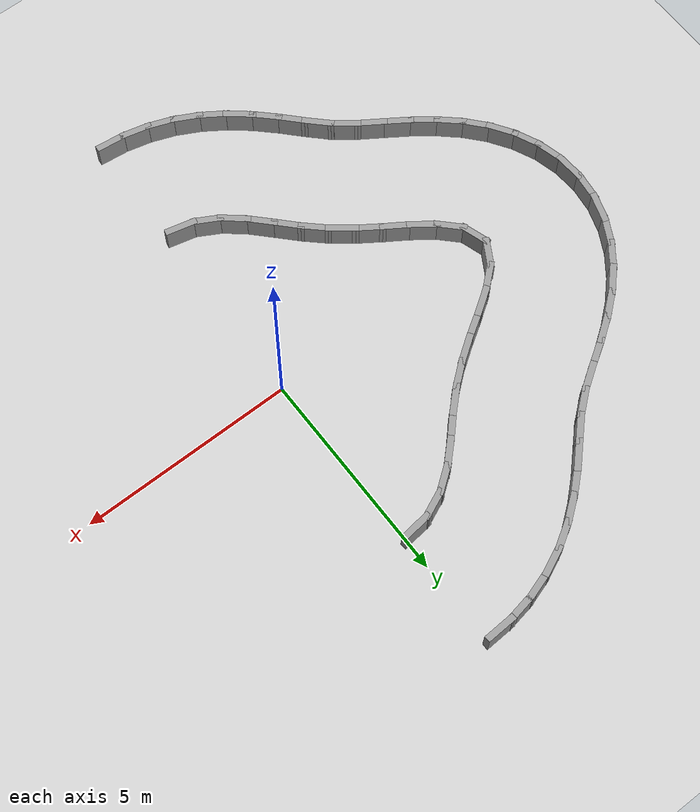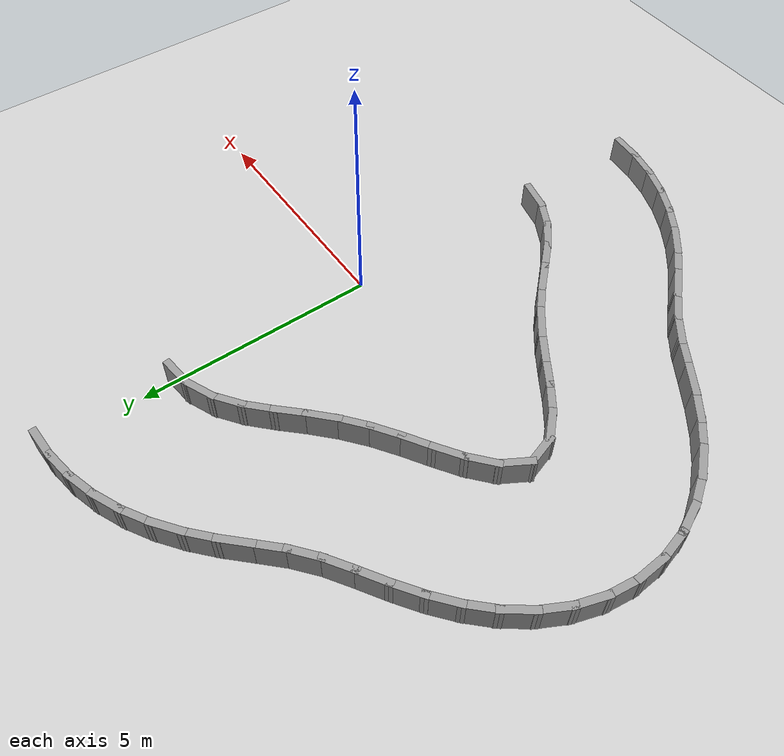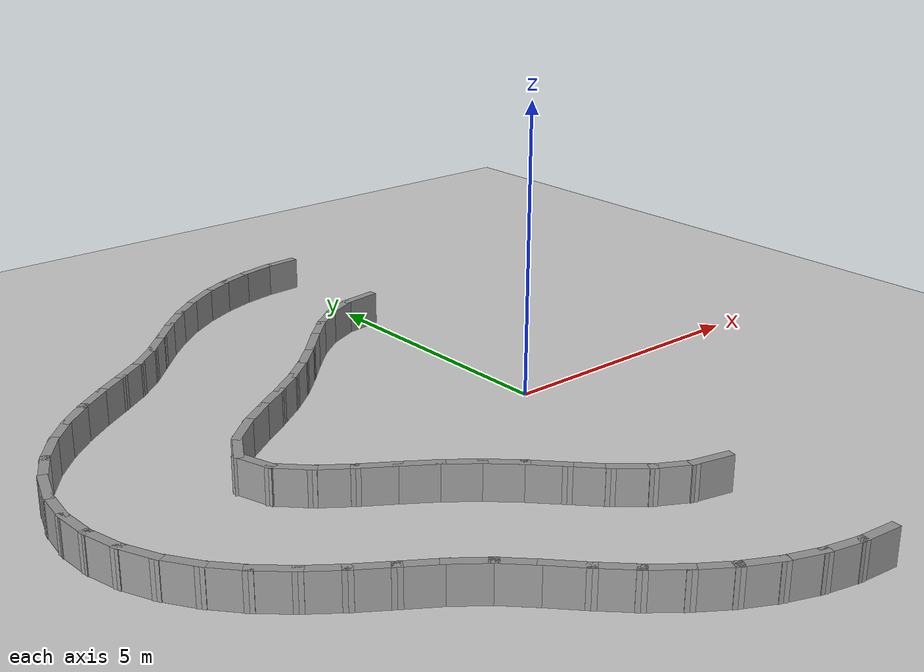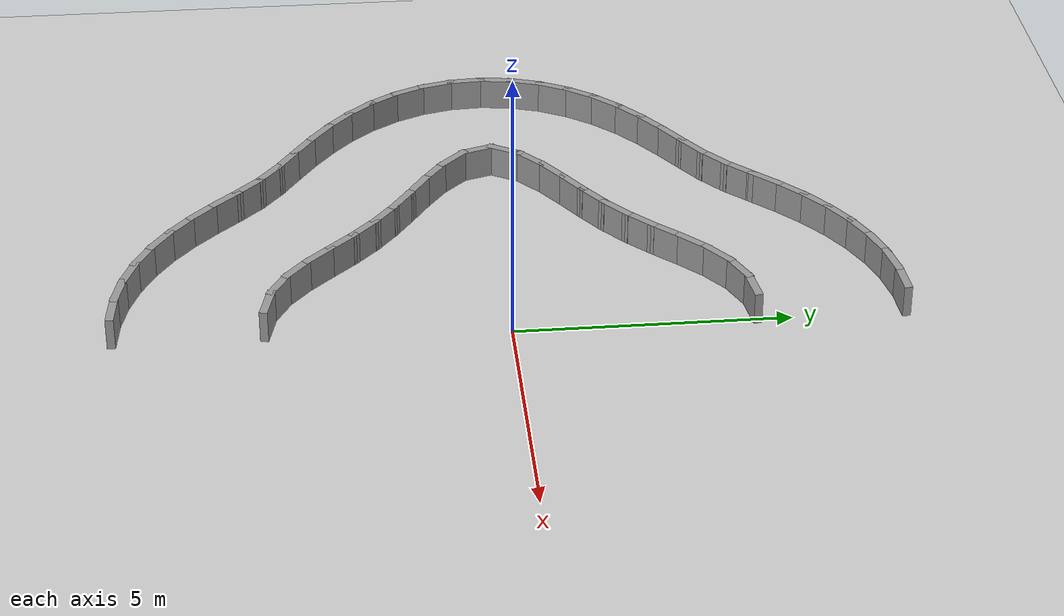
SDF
<sdf version="1.7">
 <world name="default">
  <model name="ground_plane">
   <static>1</static>
   <link name="link">
    <collision name="collision">
     <geometry><plane><normal>0 0 1</normal><size>100 100</size></plane></geometry>
     <surface><friction><ode><mu>100</mu><mu2>50</mu2></ode></friction></surface>
    </collision>
    <visual name="visual">
     <cast_shadows>0</cast_shadows>
     <geometry><plane><normal>0 0 1</normal><size>100 100</size></plane></geometry>
     <material>
      <script><uri>file://media/materials/scripts/gazebo.material</uri><name>Gazebo/Grey</name></script>
     </material>
    </visual>
   </link>
  </model>
  <model name="rand_lobed_08">
   <link name="Wall_12">
    <collision name="Wall_12_Collision">
     <geometry><box><size>0.7476 0.1500 0.6000</size></box></geometry>
     <pose>0 0 0.3000 0 -0 0</pose>
    </collision>
    <visual name="Wall_12_Visual">
     <pose>0 0 0.3000 0 -0 0</pose>
     <geometry><box><size>0.7476 0.1500 0.6000</size></box></geometry>
     <material>
      <script><uri>file://media/materials/scripts/gazebo.material</uri><name>Gazebo/Grey</name></script>
      <ambient>1 1 1 1</ambient>
     </material>
    </visual>
    <pose>-0.2493 4.3085 0 0 -0 -3.01108</pose>
   </link>
   <link name="Wall_13">
    <collision name="Wall_13_Collision">
     <geometry><box><size>0.7483 0.1500 0.6000</size></box></geometry>
     <pose>0 0 0.3000 0 -0 0</pose>
    </collision>
    <visual name="Wall_13_Visual">
     <pose>0 0 0.3000 0 -0 0</pose>
     <geometry><box><size>0.7483 0.1500 0.6000</size></box></geometry>
     <material>
      <script><uri>file://media/materials/scripts/gazebo.material</uri><name>Gazebo/Grey</name></script>
      <ambient>1 1 1 1</ambient>
     </material>
    </visual>
    <pose>-0.8189 4.1481 0 0 -0 -2.72312</pose>
   </link>
   <link name="Wall_14">
    <collision name="Wall_14_Collision">
     <geometry><box><size>0.7492 0.1500 0.6000</size></box></geometry>
     <pose>0 0 0.3000 0 -0 0</pose>
    </collision>
    <visual name="Wall_14_Visual">
     <pose>0 0 0.3000 0 -0 0</pose>
     <geometry><box><size>0.7492 0.1500 0.6000</size></box></geometry>
     <material>
      <script><uri>file://media/materials/scripts/gazebo.material</uri><name>Gazebo/Grey</name></script>
      <ambient>1 1 1 1</ambient>
     </material>
    </visual>
    <pose>-1.3320 3.8470 0 0 -0 -2.49903</pose>
   </link>
   <link name="Wall_15">
    <collision name="Wall_15_Collision">
     <geometry><box><size>0.7498 0.1500 0.6000</size></box></geometry>
     <pose>0 0 0.3000 0 -0 0</pose>
    </collision>
    <visual name="Wall_15_Visual">
     <pose>0 0 0.3000 0 -0 0</pose>
     <geometry><box><size>0.7498 0.1500 0.6000</size></box></geometry>
     <material>
      <script><uri>file://media/materials/scripts/gazebo.material</uri><name>Gazebo/Grey</name></script>
      <ambient>1 1 1 1</ambient>
     </material>
    </visual>
    <pose>-1.7860 3.4575 0 0 -0 -2.36588</pose>
   </link>
   <link name="Wall_16">
    <collision name="Wall_16_Collision">
     <geometry><box><size>0.7500 0.1500 0.6000</size></box></geometry>
     <pose>0 0 0.3000 0 -0 0</pose>
    </collision>
    <visual name="Wall_16_Visual">
     <pose>0 0 0.3000 0 -0 0</pose>
     <geometry><box><size>0.7500 0.1500 0.6000</size></box></geometry>
     <material>
      <script><uri>file://media/materials/scripts/gazebo.material</uri><name>Gazebo/Grey</name></script>
      <ambient>1 1 1 1</ambient>
     </material>
    </visual>
    <pose>-2.2065 3.0298 0 0 -0 -2.32965</pose>
   </link>
   <link name="Wall_17">
    <collision name="Wall_17_Collision">
     <geometry><box><size>0.7499 0.1500 0.6000</size></box></geometry>
     <pose>0 0 0.3000 0 -0 0</pose>
    </collision>
    <visual name="Wall_17_Visual">
     <pose>0 0 0.3000 0 -0 0</pose>
     <geometry><box><size>0.7499 0.1500 0.6000</size></box></geometry>
     <material>
      <script><uri>file://media/materials/scripts/gazebo.material</uri><name>Gazebo/Grey</name></script>
      <ambient>1 1 1 1</ambient>
     </material>
    </visual>
    <pose>-2.6282 2.6032 0 0 -0 -2.37116</pose>
   </link>
   <link name="Wall_18">
    <collision name="Wall_18_Collision">
     <geometry><box><size>0.7498 0.1500 0.6000</size></box></geometry>
     <pose>0 0 0.3000 0 -0 0</pose>
    </collision>
    <visual name="Wall_18_Visual">
     <pose>0 0 0.3000 0 -0 0</pose>
     <geometry><box><size>0.7498 0.1500 0.6000</size></box></geometry>
     <material>
      <script><uri>file://media/materials/scripts/gazebo.material</uri><name>Gazebo/Grey</name></script>
      <ambient>1 1 1 1</ambient>
     </material>
    </visual>
    <pose>-3.0748 2.2036 0 0 -0 -2.45222</pose>
   </link>
   <link name="Wall_19">
    <collision name="Wall_19_Collision">
     <geometry><box><size>0.7499 0.1500 0.6000</size></box></geometry>
     <pose>0 0 0.3000 0 -0 0</pose>
    </collision>
    <visual name="Wall_19_Visual">
     <pose>0 0 0.3000 0 -0 0</pose>
     <geometry><box><size>0.7499 0.1500 0.6000</size></box></geometry>
     <material>
      <script><uri>file://media/materials/scripts/gazebo.material</uri><name>Gazebo/Grey</name></script>
      <ambient>1 1 1 1</ambient>
     </material>
    </visual>
    <pose>-3.5519 1.8406 0 0 -0 -2.53011</pose>
   </link>
   <link name="Wall_20">
    <collision name="Wall_20_Collision">
     <geometry><box><size>0.7500 0.1500 0.6000</size></box></geometry>
     <pose>0 0 0.3000 0 -0 0</pose>
    </collision>
    <visual name="Wall_20_Visual">
     <pose>0 0 0.3000 0 -0 0</pose>
     <geometry><box><size>0.7500 0.1500 0.6000</size></box></geometry>
     <material>
      <script><uri>file://media/materials/scripts/gazebo.material</uri><name>Gazebo/Grey</name></script>
      <ambient>1 1 1 1</ambient>
     </material>
    </visual>
    <pose>-4.0495 1.5056 0 0 -0 -2.56807</pose>
   </link>
   <link name="Wall_21">
    <collision name="Wall_21_Collision">
     <geometry><box><size>0.7499 0.1500 0.6000</size></box></geometry>
     <pose>0 0 0.3000 0 -0 0</pose>
    </collision>
    <visual name="Wall_21_Visual">
     <pose>0 0 0.3000 0 -0 0</pose>
     <geometry><box><size>0.7499 0.1500 0.6000</size></box></geometry>
     <material>
      <script><uri>file://media/materials/scripts/gazebo.material</uri><name>Gazebo/Grey</name></script>
      <ambient>1 1 1 1</ambient>
     </material>
    </visual>
    <pose>-4.5487 1.1731 0 0 -0 -2.53980</pose>
   </link>
   <link name="Wall_22">
    <collision name="Wall_22_Collision">
     <geometry><box><size>0.7491 0.1500 0.6000</size></box></geometry>
     <pose>0 0 0.3000 0 -0 0</pose>
    </collision>
    <visual name="Wall_22_Visual">
     <pose>0 0 0.3000 0 -0 0</pose>
     <geometry><box><size>0.7491 0.1500 0.6000</size></box></geometry>
     <material>
      <script><uri>file://media/materials/scripts/gazebo.material</uri><name>Gazebo/Grey</name></script>
      <ambient>1 1 1 1</ambient>
     </material>
    </visual>
    <pose>-5.0204 0.8049 0 0 -0 -2.41792</pose>
   </link>
   <link name="Wall_23">
    <collision name="Wall_23_Collision">
     <geometry><box><size>0.7427 0.1500 0.6000</size></box></geometry>
     <pose>0 0 0.3000 0 -0 0</pose>
    </collision>
    <visual name="Wall_23_Visual">
     <pose>0 0 0.3000 0 -0 0</pose>
     <geometry><box><size>0.7427 0.1500 0.6000</size></box></geometry>
     <material>
      <script><uri>file://media/materials/scripts/gazebo.material</uri><name>Gazebo/Grey</name></script>
      <ambient>1 1 1 1</ambient>
     </material>
    </visual>
    <pose>-5.3933 0.3500 0 0 -0 -2.09524</pose>
   </link>
   <link name="Wall_24">
    <collision name="Wall_24_Collision">
     <geometry><box><size>0.7327 0.1500 0.6000</size></box></geometry>
     <pose>0 0 0.3000 0 -0 0</pose>
    </collision>
    <visual name="Wall_24_Visual">
     <pose>0 0 0.3000 0 -0 0</pose>
     <geometry><box><size>0.7327 0.1500 0.6000</size></box></geometry>
     <material>
      <script><uri>file://media/materials/scripts/gazebo.material</uri><name>Gazebo/Grey</name></script>
      <ambient>1 1 1 1</ambient>
     </material>
    </visual>
    <pose>-5.4532 -0.1841 0 0 -0 -1.26207</pose>
   </link>
   <link name="Wall_25">
    <collision name="Wall_25_Collision">
     <geometry><box><size>0.7485 0.1500 0.6000</size></box></geometry>
     <pose>0 0 0.3000 0 -0 0</pose>
    </collision>
    <visual name="Wall_25_Visual">
     <pose>0 0 0.3000 0 -0 0</pose>
     <geometry><box><size>0.7485 0.1500 0.6000</size></box></geometry>
     <material>
      <script><uri>file://media/materials/scripts/gazebo.material</uri><name>Gazebo/Grey</name></script>
      <ambient>1 1 1 1</ambient>
     </material>
    </visual>
    <pose>-5.1544 -0.6746 0 0 -0 -0.79143</pose>
   </link>
   <link name="Wall_26">
    <collision name="Wall_26_Collision">
     <geometry><box><size>0.7498 0.1500 0.6000</size></box></geometry>
     <pose>0 0 0.3000 0 -0 0</pose>
    </collision>
    <visual name="Wall_26_Visual">
     <pose>0 0 0.3000 0 -0 0</pose>
     <geometry><box><size>0.7498 0.1500 0.6000</size></box></geometry>
     <material>
      <script><uri>file://media/materials/scripts/gazebo.material</uri><name>Gazebo/Grey</name></script>
      <ambient>1 1 1 1</ambient>
     </material>
    </visual>
    <pose>-4.7014 -1.0636 0 0 -0 -0.62796</pose>
   </link>
   <link name="Wall_27">
    <collision name="Wall_27_Collision">
     <geometry><box><size>0.7500 0.1500 0.6000</size></box></geometry>
     <pose>0 0 0.3000 0 -0 0</pose>
    </collision>
    <visual name="Wall_27_Visual">
     <pose>0 0 0.3000 0 -0 0</pose>
     <geometry><box><size>0.7500 0.1500 0.6000</size></box></geometry>
     <material>
      <script><uri>file://media/materials/scripts/gazebo.material</uri><name>Gazebo/Grey</name></script>
      <ambient>1 1 1 1</ambient>
     </material>
    </visual>
    <pose>-4.2068 -1.4027 0 0 -0 -0.57424</pose>
   </link>
   <link name="Wall_28">
    <collision name="Wall_28_Collision">
     <geometry><box><size>0.7499 0.1500 0.6000</size></box></geometry>
     <pose>0 0 0.3000 0 -0 0</pose>
    </collision>
    <visual name="Wall_28_Visual">
     <pose>0 0 0.3000 0 -0 0</pose>
     <geometry><box><size>0.7499 0.1500 0.6000</size></box></geometry>
     <material>
      <script><uri>file://media/materials/scripts/gazebo.material</uri><name>Gazebo/Grey</name></script>
      <ambient>1 1 1 1</ambient>
     </material>
    </visual>
    <pose>-3.7063 -1.7335 0 0 -0 -0.59386</pose>
   </link>
   <link name="Wall_29">
    <collision name="Wall_29_Collision">
     <geometry><box><size>0.7498 0.1500 0.6000</size></box></geometry>
     <pose>0 0 0.3000 0 -0 0</pose>
    </collision>
    <visual name="Wall_29_Visual">
     <pose>0 0 0.3000 0 -0 0</pose>
     <geometry><box><size>0.7498 0.1500 0.6000</size></box></geometry>
     <material>
      <script><uri>file://media/materials/scripts/gazebo.material</uri><name>Gazebo/Grey</name></script>
      <ambient>1 1 1 1</ambient>
     </material>
    </visual>
    <pose>-3.2213 -2.0859 0 0 -0 -0.66270</pose>
   </link>
   <link name="Wall_30">
    <collision name="Wall_30_Collision">
     <geometry><box><size>0.7498 0.1500 0.6000</size></box></geometry>
     <pose>0 0 0.3000 0 -0 0</pose>
    </collision>
    <visual name="Wall_30_Visual">
     <pose>0 0 0.3000 0 -0 0</pose>
     <geometry><box><size>0.7498 0.1500 0.6000</size></box></geometry>
     <material>
      <script><uri>file://media/materials/scripts/gazebo.material</uri><name>Gazebo/Grey</name></script>
      <ambient>1 1 1 1</ambient>
     </material>
    </visual>
    <pose>-2.7649 -2.4743 0 0 -0 -0.74724</pose>
   </link>
   <link name="Wall_31">
    <collision name="Wall_31_Collision">
     <geometry><box><size>0.7500 0.1500 0.6000</size></box></geometry>
     <pose>0 0 0.3000 0 -0 0</pose>
    </collision>
    <visual name="Wall_31_Visual">
     <pose>0 0 0.3000 0 -0 0</pose>
     <geometry><box><size>0.7500 0.1500 0.6000</size></box></geometry>
     <material>
      <script><uri>file://media/materials/scripts/gazebo.material</uri><name>Gazebo/Grey</name></script>
      <ambient>1 1 1 1</ambient>
     </material>
    </visual>
    <pose>-2.3371 -2.8945 0 0 -0 -0.80575</pose>
   </link>
   <link name="Wall_32">
    <collision name="Wall_32_Collision">
     <geometry><box><size>0.7499 0.1500 0.6000</size></box></geometry>
     <pose>0 0 0.3000 0 -0 0</pose>
    </collision>
    <visual name="Wall_32_Visual">
     <pose>0 0 0.3000 0 -0 0</pose>
     <geometry><box><size>0.7499 0.1500 0.6000</size></box></geometry>
     <material>
      <script><uri>file://media/materials/scripts/gazebo.material</uri><name>Gazebo/Grey</name></script>
      <ambient>1 1 1 1</ambient>
     </material>
    </visual>
    <pose>-1.9197 -3.3255 0 0 -0 -0.79711</pose>
   </link>
   <link name="Wall_33">
    <collision name="Wall_33_Collision">
     <geometry><box><size>0.7494 0.1500 0.6000</size></box></geometry>
     <pose>0 0 0.3000 0 -0 0</pose>
    </collision>
    <visual name="Wall_33_Visual">
     <pose>0 0 0.3000 0 -0 0</pose>
     <geometry><box><size>0.7494 0.1500 0.6000</size></box></geometry>
     <material>
      <script><uri>file://media/materials/scripts/gazebo.material</uri><name>Gazebo/Grey</name></script>
      <ambient>1 1 1 1</ambient>
     </material>
    </visual>
    <pose>-1.4799 -3.7319 0 0 -0 -0.69481</pose>
   </link>
   <link name="Wall_34">
    <collision name="Wall_34_Collision">
     <geometry><box><size>0.7486 0.1500 0.6000</size></box></geometry>
     <pose>0 0 0.3000 0 -0 0</pose>
    </collision>
    <visual name="Wall_34_Visual">
     <pose>0 0 0.3000 0 -0 0</pose>
     <geometry><box><size>0.7486 0.1500 0.6000</size></box></geometry>
     <material>
      <script><uri>file://media/materials/scripts/gazebo.material</uri><name>Gazebo/Grey</name></script>
      <ambient>1 1 1 1</ambient>
     </material>
    </visual>
    <pose>-0.9866 -4.0665 0 0 -0 -0.49721</pose>
   </link>
   <link name="Wall_35">
    <collision name="Wall_35_Collision">
     <geometry><box><size>0.7478 0.1500 0.6000</size></box></geometry>
     <pose>0 0 0.3000 0 -0 0</pose>
    </collision>
    <visual name="Wall_35_Visual">
     <pose>0 0 0.3000 0 -0 0</pose>
     <geometry><box><size>0.7478 0.1500 0.6000</size></box></geometry>
     <material>
      <script><uri>file://media/materials/scripts/gazebo.material</uri><name>Gazebo/Grey</name></script>
      <ambient>1 1 1 1</ambient>
     </material>
    </visual>
    <pose>-0.4322 -4.2761 0 0 -0 -0.22529</pose>
   </link>
   <link name="Wall_67">
    <collision name="Wall_67_Collision">
     <geometry><box><size>0.7496 0.1500 0.6000</size></box></geometry>
     <pose>0 0 0.3000 0 -0 0</pose>
    </collision>
    <visual name="Wall_67_Visual">
     <pose>0 0 0.3000 0 -0 0</pose>
     <geometry><box><size>0.7496 0.1500 0.6000</size></box></geometry>
     <material>
      <script><uri>file://media/materials/scripts/gazebo.material</uri><name>Gazebo/Grey</name></script>
      <ambient>1 1 1 1</ambient>
     </material>
    </visual>
    <pose>-0.2500 7.0067 0 0 -0 -3.08700</pose>
   </link>
   <link name="Wall_68">
    <collision name="Wall_68_Collision">
     <geometry><box><size>0.7496 0.1500 0.6000</size></box></geometry>
     <pose>0 0 0.3000 0 -0 0</pose>
    </collision>
    <visual name="Wall_68_Visual">
     <pose>0 0 0.3000 0 -0 0</pose>
     <geometry><box><size>0.7496 0.1500 0.6000</size></box></geometry>
     <material>
      <script><uri>file://media/materials/scripts/gazebo.material</uri><name>Gazebo/Grey</name></script>
      <ambient>1 1 1 1</ambient>
     </material>
    </visual>
    <pose>-0.8441 6.9353 0 0 -0 -2.95714</pose>
   </link>
   <link name="Wall_69">
    <collision name="Wall_69_Collision">
     <geometry><box><size>0.7496 0.1500 0.6000</size></box></geometry>
     <pose>0 0 0.3000 0 -0 0</pose>
    </collision>
    <visual name="Wall_69_Visual">
     <pose>0 0 0.3000 0 -0 0</pose>
     <geometry><box><size>0.7496 0.1500 0.6000</size></box></geometry>
     <material>
      <script><uri>file://media/materials/scripts/gazebo.material</uri><name>Gazebo/Grey</name></script>
      <ambient>1 1 1 1</ambient>
     </material>
    </visual>
    <pose>-1.4241 6.7883 0 0 -0 -2.82963</pose>
   </link>
   <link name="Wall_70">
    <collision name="Wall_70_Collision">
     <geometry><box><size>0.7496 0.1500 0.6000</size></box></geometry>
     <pose>0 0 0.3000 0 -0 0</pose>
    </collision>
    <visual name="Wall_70_Visual">
     <pose>0 0 0.3000 0 -0 0</pose>
     <geometry><box><size>0.7496 0.1500 0.6000</size></box></geometry>
     <material>
      <script><uri>file://media/materials/scripts/gazebo.material</uri><name>Gazebo/Grey</name></script>
      <ambient>1 1 1 1</ambient>
     </material>
    </visual>
    <pose>-1.9813 6.5699 0 0 -0 -2.70641</pose>
   </link>
   <link name="Wall_71">
    <collision name="Wall_71_Collision">
     <geometry><box><size>0.7497 0.1500 0.6000</size></box></geometry>
     <pose>0 0 0.3000 0 -0 0</pose>
    </collision>
    <visual name="Wall_71_Visual">
     <pose>0 0 0.3000 0 -0 0</pose>
     <geometry><box><size>0.7497 0.1500 0.6000</size></box></geometry>
     <material>
      <script><uri>file://media/materials/scripts/gazebo.material</uri><name>Gazebo/Grey</name></script>
      <ambient>1 1 1 1</ambient>
     </material>
    </visual>
    <pose>-2.5086 6.2864 0 0 -0 -2.59011</pose>
   </link>
   <link name="Wall_72">
    <collision name="Wall_72_Collision">
     <geometry><box><size>0.7498 0.1500 0.6000</size></box></geometry>
     <pose>0 0 0.3000 0 -0 0</pose>
    </collision>
    <visual name="Wall_72_Visual">
     <pose>0 0 0.3000 0 -0 0</pose>
     <geometry><box><size>0.7498 0.1500 0.6000</size></box></geometry>
     <material>
      <script><uri>file://media/materials/scripts/gazebo.material</uri><name>Gazebo/Grey</name></script>
      <ambient>1 1 1 1</ambient>
     </material>
    </visual>
    <pose>-3.0014 5.9461 0 0 -0 -2.48453</pose>
   </link>
   <link name="Wall_73">
    <collision name="Wall_73_Collision">
     <geometry><box><size>0.7499 0.1500 0.6000</size></box></geometry>
     <pose>0 0 0.3000 0 -0 0</pose>
    </collision>
    <visual name="Wall_73_Visual">
     <pose>0 0 0.3000 0 -0 0</pose>
     <geometry><box><size>0.7499 0.1500 0.6000</size></box></geometry>
     <material>
      <script><uri>file://media/materials/scripts/gazebo.material</uri><name>Gazebo/Grey</name></script>
      <ambient>1 1 1 1</ambient>
     </material>
    </visual>
    <pose>-3.4592 5.5596 0 0 -0 -2.39623</pose>
   </link>
   <link name="Wall_74">
    <collision name="Wall_74_Collision">
     <geometry><box><size>0.7500 0.1500 0.6000</size></box></geometry>
     <pose>0 0 0.3000 0 -0 0</pose>
    </collision>
    <visual name="Wall_74_Visual">
     <pose>0 0 0.3000 0 -0 0</pose>
     <geometry><box><size>0.7500 0.1500 0.6000</size></box></geometry>
     <material>
      <script><uri>file://media/materials/scripts/gazebo.material</uri><name>Gazebo/Grey</name></script>
      <ambient>1 1 1 1</ambient>
     </material>
    </visual>
    <pose>-3.8880 5.1403 0 0 -0 -2.33845</pose>
   </link>
   <link name="Wall_75">
    <collision name="Wall_75_Collision">
     <geometry><box><size>0.7499 0.1500 0.6000</size></box></geometry>
     <pose>0 0 0.3000 0 -0 0</pose>
    </collision>
    <visual name="Wall_75_Visual">
     <pose>0 0 0.3000 0 -0 0</pose>
     <geometry><box><size>0.7499 0.1500 0.6000</size></box></geometry>
     <material>
      <script><uri>file://media/materials/scripts/gazebo.material</uri><name>Gazebo/Grey</name></script>
      <ambient>1 1 1 1</ambient>
     </material>
    </visual>
    <pose>-4.3051 4.7091 0 0 -0 -2.34104</pose>
   </link>
   <link name="Wall_76">
    <collision name="Wall_76_Collision">
     <geometry><box><size>0.7495 0.1500 0.6000</size></box></geometry>
     <pose>0 0 0.3000 0 -0 0</pose>
    </collision>
    <visual name="Wall_76_Visual">
     <pose>0 0 0.3000 0 -0 0</pose>
     <geometry><box><size>0.7495 0.1500 0.6000</size></box></geometry>
     <material>
      <script><uri>file://media/materials/scripts/gazebo.material</uri><name>Gazebo/Grey</name></script>
      <ambient>1 1 1 1</ambient>
     </material>
    </visual>
    <pose>-4.7433 4.3007 0 0 -0 -2.44146</pose>
   </link>
   <link name="Wall_77">
    <collision name="Wall_77_Collision">
     <geometry><box><size>0.7499 0.1500 0.6000</size></box></geometry>
     <pose>0 0 0.3000 0 -0 0</pose>
    </collision>
    <visual name="Wall_77_Visual">
     <pose>0 0 0.3000 0 -0 0</pose>
     <geometry><box><size>0.7499 0.1500 0.6000</size></box></geometry>
     <material>
      <script><uri>file://media/materials/scripts/gazebo.material</uri><name>Gazebo/Grey</name></script>
      <ambient>1 1 1 1</ambient>
     </material>
    </visual>
    <pose>-5.2212 3.9398 0 0 -0 -2.54822</pose>
   </link>
   <link name="Wall_78">
    <collision name="Wall_78_Collision">
     <geometry><box><size>0.7500 0.1500 0.6000</size></box></geometry>
     <pose>0 0 0.3000 0 -0 0</pose>
    </collision>
    <visual name="Wall_78_Visual">
     <pose>0 0 0.3000 0 -0 0</pose>
     <geometry><box><size>0.7500 0.1500 0.6000</size></box></geometry>
     <material>
      <script><uri>file://media/materials/scripts/gazebo.material</uri><name>Gazebo/Grey</name></script>
      <ambient>1 1 1 1</ambient>
     </material>
    </visual>
    <pose>-5.7215 3.6088 0 0 -0 -2.56582</pose>
   </link>
   <link name="Wall_79">
    <collision name="Wall_79_Collision">
     <geometry><box><size>0.7499 0.1500 0.6000</size></box></geometry>
     <pose>0 0 0.3000 0 -0 0</pose>
    </collision>
    <visual name="Wall_79_Visual">
     <pose>0 0 0.3000 0 -0 0</pose>
     <geometry><box><size>0.7499 0.1500 0.6000</size></box></geometry>
     <material>
      <script><uri>file://media/materials/scripts/gazebo.material</uri><name>Gazebo/Grey</name></script>
      <ambient>1 1 1 1</ambient>
     </material>
    </visual>
    <pose>-6.2175 3.2715 0 0 -0 -2.52284</pose>
   </link>
   <link name="Wall_80">
    <collision name="Wall_80_Collision">
     <geometry><box><size>0.7498 0.1500 0.6000</size></box></geometry>
     <pose>0 0 0.3000 0 -0 0</pose>
    </collision>
    <visual name="Wall_80_Visual">
     <pose>0 0 0.3000 0 -0 0</pose>
     <geometry><box><size>0.7498 0.1500 0.6000</size></box></geometry>
     <material>
      <script><uri>file://media/materials/scripts/gazebo.material</uri><name>Gazebo/Grey</name></script>
      <ambient>1 1 1 1</ambient>
     </material>
    </visual>
    <pose>-6.6914 2.9046 0 0 -0 -2.44301</pose>
   </link>
   <link name="Wall_81">
    <collision name="Wall_81_Collision">
     <geometry><box><size>0.7496 0.1500 0.6000</size></box></geometry>
     <pose>0 0 0.3000 0 -0 0</pose>
    </collision>
    <visual name="Wall_81_Visual">
     <pose>0 0 0.3000 0 -0 0</pose>
     <geometry><box><size>0.7496 0.1500 0.6000</size></box></geometry>
     <material>
      <script><uri>file://media/materials/scripts/gazebo.material</uri><name>Gazebo/Grey</name></script>
      <ambient>1 1 1 1</ambient>
     </material>
    </visual>
    <pose>-7.1286 2.4954 0 0 -0 -2.33541</pose>
   </link>
   <link name="Wall_82">
    <collision name="Wall_82_Collision">
     <geometry><box><size>0.7495 0.1500 0.6000</size></box></geometry>
     <pose>0 0 0.3000 0 -0 0</pose>
    </collision>
    <visual name="Wall_82_Visual">
     <pose>0 0 0.3000 0 -0 0</pose>
     <geometry><box><size>0.7495 0.1500 0.6000</size></box></geometry>
     <material>
      <script><uri>file://media/materials/scripts/gazebo.material</uri><name>Gazebo/Grey</name></script>
      <ambient>1 1 1 1</ambient>
     </material>
    </visual>
    <pose>-7.5135 2.0373 0 0 -0 -2.20366</pose>
   </link>
   <link name="Wall_83">
    <collision name="Wall_83_Collision">
     <geometry><box><size>0.7493 0.1500 0.6000</size></box></geometry>
     <pose>0 0 0.3000 0 -0 0</pose>
    </collision>
    <visual name="Wall_83_Visual">
     <pose>0 0 0.3000 0 -0 0</pose>
     <geometry><box><size>0.7493 0.1500 0.6000</size></box></geometry>
     <material>
      <script><uri>file://media/materials/scripts/gazebo.material</uri><name>Gazebo/Grey</name></script>
      <ambient>1 1 1 1</ambient>
     </material>
    </visual>
    <pose>-7.8290 1.5298 0 0 -0 -2.05046</pose>
   </link>
   <link name="Wall_84">
    <collision name="Wall_84_Collision">
     <geometry><box><size>0.7492 0.1500 0.6000</size></box></geometry>
     <pose>0 0 0.3000 0 -0 0</pose>
    </collision>
    <visual name="Wall_84_Visual">
     <pose>0 0 0.3000 0 -0 0</pose>
     <geometry><box><size>0.7492 0.1500 0.6000</size></box></geometry>
     <material>
      <script><uri>file://media/materials/scripts/gazebo.material</uri><name>Gazebo/Grey</name></script>
      <ambient>1 1 1 1</ambient>
     </material>
    </visual>
    <pose>-8.0584 0.9785 0 0 -0 -1.87949</pose>
   </link>
   <link name="Wall_85">
    <collision name="Wall_85_Collision">
     <geometry><box><size>0.7491 0.1500 0.6000</size></box></geometry>
     <pose>0 0 0.3000 0 -0 0</pose>
    </collision>
    <visual name="Wall_85_Visual">
     <pose>0 0 0.3000 0 -0 0</pose>
     <geometry><box><size>0.7491 0.1500 0.6000</size></box></geometry>
     <material>
      <script><uri>file://media/materials/scripts/gazebo.material</uri><name>Gazebo/Grey</name></script>
      <ambient>1 1 1 1</ambient>
     </material>
    </visual>
    <pose>-8.1868 0.3958 0 0 -0 -1.69601</pose>
   </link>
   <link name="Wall_86">
    <collision name="Wall_86_Collision">
     <geometry><box><size>0.7491 0.1500 0.6000</size></box></geometry>
     <pose>0 0 0.3000 0 -0 0</pose>
    </collision>
    <visual name="Wall_86_Visual">
     <pose>0 0 0.3000 0 -0 0</pose>
     <geometry><box><size>0.7491 0.1500 0.6000</size></box></geometry>
     <material>
      <script><uri>file://media/materials/scripts/gazebo.material</uri><name>Gazebo/Grey</name></script>
      <ambient>1 1 1 1</ambient>
     </material>
    </visual>
    <pose>-8.2052 -0.2003 0 0 -0 -1.50736</pose>
   </link>
   <link name="Wall_87">
    <collision name="Wall_87_Collision">
     <geometry><box><size>0.7492 0.1500 0.6000</size></box></geometry>
     <pose>0 0 0.3000 0 -0 0</pose>
    </collision>
    <visual name="Wall_87_Visual">
     <pose>0 0 0.3000 0 -0 0</pose>
     <geometry><box><size>0.7492 0.1500 0.6000</size></box></geometry>
     <material>
      <script><uri>file://media/materials/scripts/gazebo.material</uri><name>Gazebo/Grey</name></script>
      <ambient>1 1 1 1</ambient>
     </material>
    </visual>
    <pose>-8.1123 -0.7896 0 0 -0 -1.32145</pose>
   </link>
   <link name="Wall_88">
    <collision name="Wall_88_Collision">
     <geometry><box><size>0.7493 0.1500 0.6000</size></box></geometry>
     <pose>0 0 0.3000 0 -0 0</pose>
    </collision>
    <visual name="Wall_88_Visual">
     <pose>0 0 0.3000 0 -0 0</pose>
     <geometry><box><size>0.7493 0.1500 0.6000</size></box></geometry>
     <material>
      <script><uri>file://media/materials/scripts/gazebo.material</uri><name>Gazebo/Grey</name></script>
      <ambient>1 1 1 1</ambient>
     </material>
    </visual>
    <pose>-7.9148 -1.3529 0 0 -0 -1.14556</pose>
   </link>
   <link name="Wall_89">
    <collision name="Wall_89_Collision">
     <geometry><box><size>0.7494 0.1500 0.6000</size></box></geometry>
     <pose>0 0 0.3000 0 -0 0</pose>
    </collision>
    <visual name="Wall_89_Visual">
     <pose>0 0 0.3000 0 -0 0</pose>
     <geometry><box><size>0.7494 0.1500 0.6000</size></box></geometry>
     <material>
      <script><uri>file://media/materials/scripts/gazebo.material</uri><name>Gazebo/Grey</name></script>
      <ambient>1 1 1 1</ambient>
     </material>
    </visual>
    <pose>-7.6257 -1.8758 0 0 -0 -0.98612</pose>
   </link>
   <link name="Wall_90">
    <collision name="Wall_90_Collision">
     <geometry><box><size>0.7496 0.1500 0.6000</size></box></geometry>
     <pose>0 0 0.3000 0 -0 0</pose>
    </collision>
    <visual name="Wall_90_Visual">
     <pose>0 0 0.3000 0 -0 0</pose>
     <geometry><box><size>0.7496 0.1500 0.6000</size></box></geometry>
     <material>
      <script><uri>file://media/materials/scripts/gazebo.material</uri><name>Gazebo/Grey</name></script>
      <ambient>1 1 1 1</ambient>
     </material>
    </visual>
    <pose>-7.2617 -2.3503 0 0 -0 -0.84693</pose>
   </link>
   <link name="Wall_91">
    <collision name="Wall_91_Collision">
     <geometry><box><size>0.7497 0.1500 0.6000</size></box></geometry>
     <pose>0 0 0.3000 0 -0 0</pose>
    </collision>
    <visual name="Wall_91_Visual">
     <pose>0 0 0.3000 0 -0 0</pose>
     <geometry><box><size>0.7497 0.1500 0.6000</size></box></geometry>
     <material>
      <script><uri>file://media/materials/scripts/gazebo.material</uri><name>Gazebo/Grey</name></script>
      <ambient>1 1 1 1</ambient>
     </material>
    </visual>
    <pose>-6.8400 -2.7752 0 0 -0 -0.73119</pose>
   </link>
   <link name="Wall_92">
    <collision name="Wall_92_Collision">
     <geometry><box><size>0.7499 0.1500 0.6000</size></box></geometry>
     <pose>0 0 0.3000 0 -0 0</pose>
    </collision>
    <visual name="Wall_92_Visual">
     <pose>0 0 0.3000 0 -0 0</pose>
     <geometry><box><size>0.7499 0.1500 0.6000</size></box></geometry>
     <material>
      <script><uri>file://media/materials/scripts/gazebo.material</uri><name>Gazebo/Grey</name></script>
      <ambient>1 1 1 1</ambient>
     </material>
    </visual>
    <pose>-6.3765 -3.1549 0 0 -0 -0.64155</pose>
   </link>
   <link name="Wall_93">
    <collision name="Wall_93_Collision">
     <geometry><box><size>0.7500 0.1500 0.6000</size></box></geometry>
     <pose>0 0 0.3000 0 -0 0</pose>
    </collision>
    <visual name="Wall_93_Visual">
     <pose>0 0 0.3000 0 -0 0</pose>
     <geometry><box><size>0.7500 0.1500 0.6000</size></box></geometry>
     <material>
      <script><uri>file://media/materials/scripts/gazebo.material</uri><name>Gazebo/Grey</name></script>
      <ambient>1 1 1 1</ambient>
     </material>
    </visual>
    <pose>-5.8860 -3.5000 0 0 -0 -0.58481</pose>
   </link>
   <link name="Wall_94">
    <collision name="Wall_94_Collision">
     <geometry><box><size>0.7500 0.1500 0.6000</size></box></geometry>
     <pose>0 0 0.3000 0 -0 0</pose>
    </collision>
    <visual name="Wall_94_Visual">
     <pose>0 0 0.3000 0 -0 0</pose>
     <geometry><box><size>0.7500 0.1500 0.6000</size></box></geometry>
     <material>
      <script><uri>file://media/materials/scripts/gazebo.material</uri><name>Gazebo/Grey</name></script>
      <ambient>1 1 1 1</ambient>
     </material>
    </visual>
    <pose>-5.3847 -3.8296 0 0 -0 -0.57847</pose>
   </link>
   <link name="Wall_95">
    <collision name="Wall_95_Collision">
     <geometry><box><size>0.7496 0.1500 0.6000</size></box></geometry>
     <pose>0 0 0.3000 0 -0 0</pose>
    </collision>
    <visual name="Wall_95_Visual">
     <pose>0 0 0.3000 0 -0 0</pose>
     <geometry><box><size>0.7496 0.1500 0.6000</size></box></geometry>
     <material>
      <script><uri>file://media/materials/scripts/gazebo.material</uri><name>Gazebo/Grey</name></script>
      <ambient>1 1 1 1</ambient>
     </material>
    </visual>
    <pose>-4.8962 -4.1767 0 0 -0 -0.65712</pose>
   </link>
   <link name="Wall_96">
    <collision name="Wall_96_Collision">
     <geometry><box><size>0.7498 0.1500 0.6000</size></box></geometry>
     <pose>0 0 0.3000 0 -0 0</pose>
    </collision>
    <visual name="Wall_96_Visual">
     <pose>0 0 0.3000 0 -0 0</pose>
     <geometry><box><size>0.7498 0.1500 0.6000</size></box></geometry>
     <material>
      <script><uri>file://media/materials/scripts/gazebo.material</uri><name>Gazebo/Grey</name></script>
      <ambient>1 1 1 1</ambient>
     </material>
    </visual>
    <pose>-4.4452 -4.5704 0 0 -0 -0.77819</pose>
   </link>
   <link name="Wall_97">
    <collision name="Wall_97_Collision">
     <geometry><box><size>0.7500 0.1500 0.6000</size></box></geometry>
     <pose>0 0 0.3000 0 -0 0</pose>
    </collision>
    <visual name="Wall_97_Visual">
     <pose>0 0 0.3000 0 -0 0</pose>
     <geometry><box><size>0.7500 0.1500 0.6000</size></box></geometry>
     <material>
      <script><uri>file://media/materials/scripts/gazebo.material</uri><name>Gazebo/Grey</name></script>
      <ambient>1 1 1 1</ambient>
     </material>
    </visual>
    <pose>-4.0251 -4.9985 0 0 -0 -0.81119</pose>
   </link>
   <link name="Wall_98">
    <collision name="Wall_98_Collision">
     <geometry><box><size>0.7499 0.1500 0.6000</size></box></geometry>
     <pose>0 0 0.3000 0 -0 0</pose>
    </collision>
    <visual name="Wall_98_Visual">
     <pose>0 0 0.3000 0 -0 0</pose>
     <geometry><box><size>0.7499 0.1500 0.6000</size></box></geometry>
     <material>
      <script><uri>file://media/materials/scripts/gazebo.material</uri><name>Gazebo/Grey</name></script>
      <ambient>1 1 1 1</ambient>
     </material>
    </visual>
    <pose>-3.6029 -5.4245 0 0 -0 -0.76872</pose>
   </link>
   <link name="Wall_99">
    <collision name="Wall_99_Collision">
     <geometry><box><size>0.7498 0.1500 0.6000</size></box></geometry>
     <pose>0 0 0.3000 0 -0 0</pose>
    </collision>
    <visual name="Wall_99_Visual">
     <pose>0 0 0.3000 0 -0 0</pose>
     <geometry><box><size>0.7498 0.1500 0.6000</size></box></geometry>
     <material>
      <script><uri>file://media/materials/scripts/gazebo.material</uri><name>Gazebo/Grey</name></script>
      <ambient>1 1 1 1</ambient>
     </material>
    </visual>
    <pose>-3.1557 -5.8236 0 0 -0 -0.68847</pose>
   </link>
   <link name="Wall_100">
    <collision name="Wall_100_Collision">
     <geometry><box><size>0.7497 0.1500 0.6000</size></box></geometry>
     <pose>0 0 0.3000 0 -0 0</pose>
    </collision>
    <visual name="Wall_100_Visual">
     <pose>0 0 0.3000 0 -0 0</pose>
     <geometry><box><size>0.7497 0.1500 0.6000</size></box></geometry>
     <material>
      <script><uri>file://media/materials/scripts/gazebo.material</uri><name>Gazebo/Grey</name></script>
      <ambient>1 1 1 1</ambient>
     </material>
    </visual>
    <pose>-2.6745 -6.1803 0 0 -0 -0.58760</pose>
   </link>
   <link name="Wall_101">
    <collision name="Wall_101_Collision">
     <geometry><box><size>0.7496 0.1500 0.6000</size></box></geometry>
     <pose>0 0 0.3000 0 -0 0</pose>
    </collision>
    <visual name="Wall_101_Visual">
     <pose>0 0 0.3000 0 -0 0</pose>
     <geometry><box><size>0.7496 0.1500 0.6000</size></box></geometry>
     <material>
      <script><uri>file://media/materials/scripts/gazebo.material</uri><name>Gazebo/Grey</name></script>
      <ambient>1 1 1 1</ambient>
     </material>
    </visual>
    <pose>-2.1583 -6.4835 0 0 -0 -0.47433</pose>
   </link>
   <link name="Wall_102">
    <collision name="Wall_102_Collision">
     <geometry><box><size>0.7496 0.1500 0.6000</size></box></geometry>
     <pose>0 0 0.3000 0 -0 0</pose>
    </collision>
    <visual name="Wall_102_Visual">
     <pose>0 0 0.3000 0 -0 0</pose>
     <geometry><box><size>0.7496 0.1500 0.6000</size></box></geometry>
     <material>
      <script><uri>file://media/materials/scripts/gazebo.material</uri><name>Gazebo/Grey</name></script>
      <ambient>1 1 1 1</ambient>
     </material>
    </visual>
    <pose>-1.6102 -6.7241 0 0 -0 -0.35311</pose>
   </link>
   <link name="Wall_103">
    <collision name="Wall_103_Collision">
     <geometry><box><size>0.7496 0.1500 0.6000</size></box></geometry>
     <pose>0 0 0.3000 0 -0 0</pose>
    </collision>
    <visual name="Wall_103_Visual">
     <pose>0 0 0.3000 0 -0 0</pose>
     <geometry><box><size>0.7496 0.1500 0.6000</size></box></geometry>
     <material>
      <script><uri>file://media/materials/scripts/gazebo.material</uri><name>Gazebo/Grey</name></script>
      <ambient>1 1 1 1</ambient>
     </material>
    </visual>
    <pose>-1.0368 -6.8952 0 0 -0 -0.22672</pose>
   </link>
   <link name="Wall_104">
    <collision name="Wall_104_Collision">
     <geometry><box><size>0.7496 0.1500 0.6000</size></box></geometry>
     <pose>0 0 0.3000 0 -0 0</pose>
    </collision>
    <visual name="Wall_104_Visual">
     <pose>0 0 0.3000 0 -0 0</pose>
     <geometry><box><size>0.7496 0.1500 0.6000</size></box></geometry>
     <material>
      <script><uri>file://media/materials/scripts/gazebo.material</uri><name>Gazebo/Grey</name></script>
      <ambient>1 1 1 1</ambient>
     </material>
    </visual>
    <pose>-0.4463 -6.9917 0 0 -0 -0.09739</pose>
   </link>
   <static>1</static>
  </model>
 </world>
</sdf>
